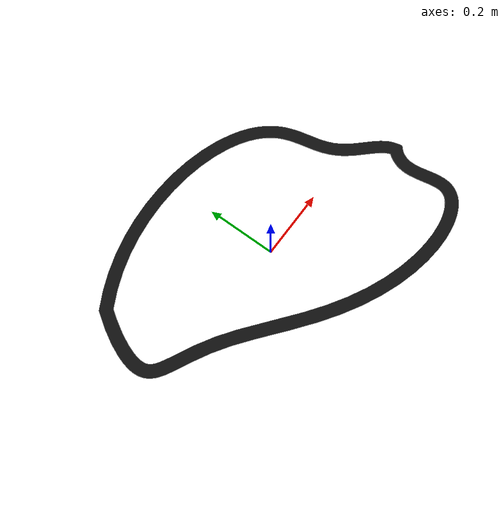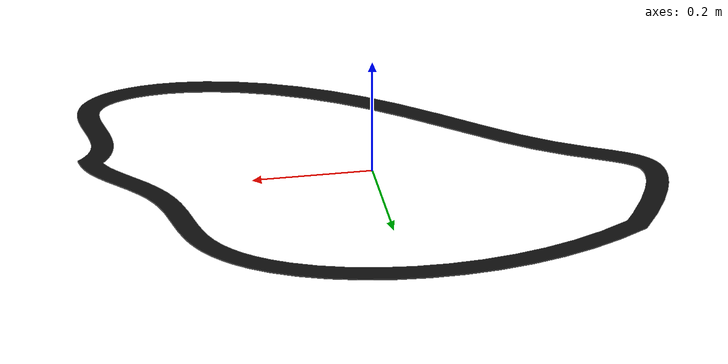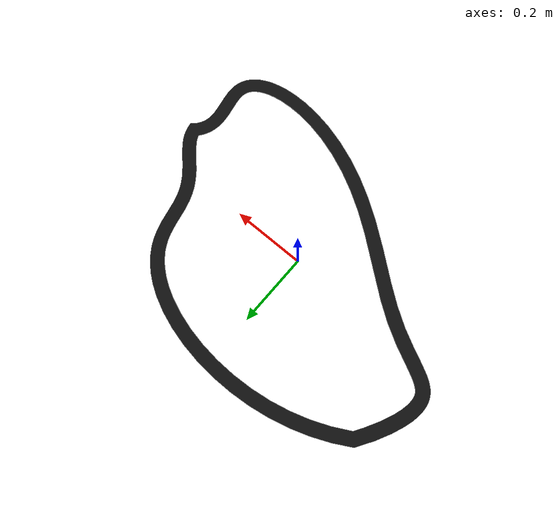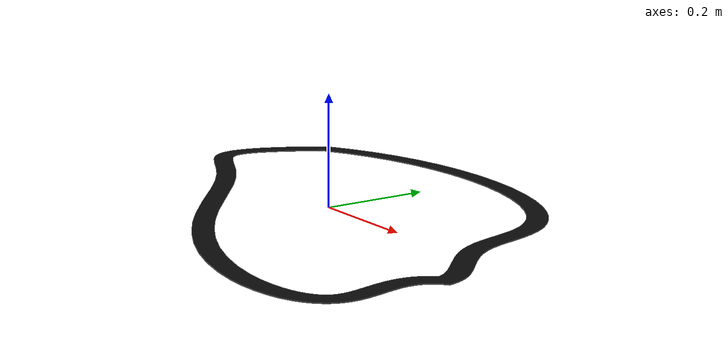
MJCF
<mujoco model="SwingTrack">
  <asset>
    <mesh name="SwingTrack" file="../../objects/tracks/SwingTrack.obj" inertia="shell"
          scale="7.5 7.5 7.5"/>
  </asset>
  <worldbody>
    <geom name="line_SwingTrack" type="mesh" mesh="SwingTrack" quat="1 0 0 0"
          pos="-0.0205 0.0333 0.002"
          contype="0" conaffinity="0" group="2" rgba="0.05 0.05 0.05 1"/>
  </worldbody>
</mujoco>
